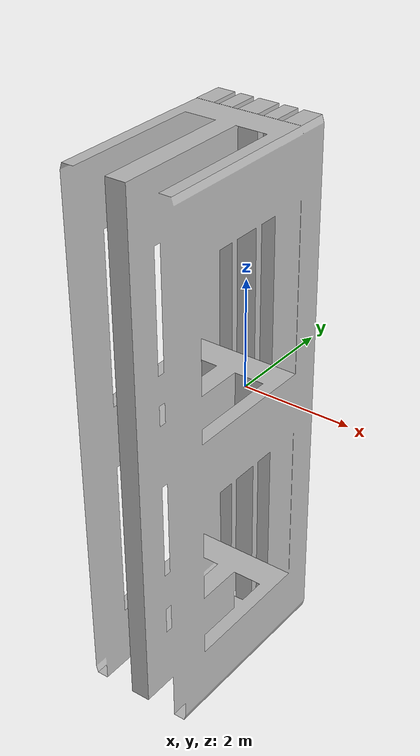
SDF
<?xml version="1.0" ?>
<sdf version="1.4">
	<model name="blockwood_benchmark">
		<static>true</static>
		<link name="link">
			<pose>0 0 0.04 0 0 0</pose>
			<collision name="collision">
				<geometry>
					<mesh>
						<uri>model://blockwood_benchmark/mesh/pallet.dae</uri>
						<scale>0.246 2.46 0.787</scale>
					</mesh>
				</geometry>
				<surface>
					<bounce>
						<restitution_coefficient>0.01</restitution_coefficient>
						<threshold>5.0</threshold>
					</bounce>
					<friction>
						<ode>
							<mu>10</mu>
							<mu2>10</mu2>
						</ode>
					</friction>
					<contact>
						<ode>
							<soft_cfm>0.001</soft_cfm>
							<kp>100000.0</kp>
							<kd>1000.0</kd>
						</ode>
					</contact>
				</surface>
			</collision>
			<visual name="visual">
				<geometry>
					<mesh>
						<uri>model://blockwood_benchmark/mesh/pallet.dae</uri>
						<scale>0.246 2.46 0.787</scale>
					</mesh>
				</geometry>
			</visual>
		</link>
	</model>
</sdf>
